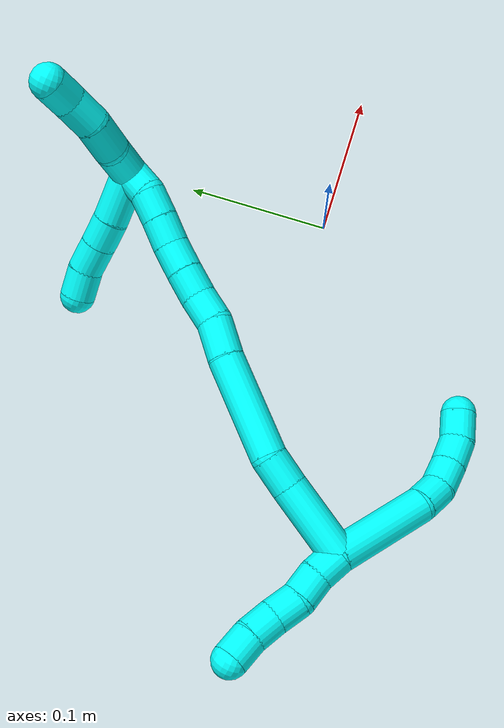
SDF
<sdf version="1.7">
 <world name="default">
  <model name="3">
   <static>0</static>
   <link name="3">
    <collision name="collision-cylinder-e_1_2_8">
     <pose>0.003586 -0.027274 0.020466 0.927049 0.10479 0.052415</pose>
     <geometry><cylinder><radius>0.0125</radius><length>0.068574</length></cylinder></geometry>
     <surface>
      <friction><ode><mu>1.16</mu><mu2>1.16</mu2><slip1>0</slip1><slip2>0</slip2></ode></friction>
      <contact><ode><kp>1e+06</kp><kd>1</kd><max_vel>0</max_vel><min_depth>0.001</min_depth></ode></contact>
     </surface>
    </collision>
    <visual name="visual-cylinder-e_1_2_8">
     <pose>0.003586 -0.027274 0.020466 0.927049 0.10479 0.052415</pose>
     <geometry><cylinder><radius>0.0125</radius><length>0.068574</length></cylinder></geometry>
     <material><ambient>0.003922 1 0.996078 1</ambient></material>
    </visual>
    <collision name="collision-cylinder-e_2_8_9">
     <pose>0.010712 -0.062586 0.045992 1.00896 0.35673 0.198425</pose>
     <geometry><cylinder><radius>0.0125</radius><length>0.020272</length></cylinder></geometry>
     <surface>
      <friction><ode><mu>1.16</mu><mu2>1.16</mu2><slip1>0</slip1><slip2>0</slip2></ode></friction>
      <contact><ode><kp>1e+06</kp><kd>1</kd><max_vel>0</max_vel><min_depth>0.001</min_depth></ode></contact>
     </surface>
    </collision>
    <visual name="visual-cylinder-e_2_8_9">
     <pose>0.010712 -0.062586 0.045992 1.00896 0.35673 0.198425</pose>
     <geometry><cylinder><radius>0.0125</radius><length>0.020272</length></cylinder></geometry>
     <material><ambient>0.003922 1 0.996078 1</ambient></material>
    </visual>
    <collision name="collision-cylinder-e_3_9_10">
     <pose>0.019839 -0.076142 0.057387 0.71657 0.586873 0.225326</pose>
     <geometry><cylinder><radius>0.0125</radius><length>0.02018</length></cylinder></geometry>
     <surface>
      <friction><ode><mu>1.16</mu><mu2>1.16</mu2><slip1>0</slip1><slip2>0</slip2></ode></friction>
      <contact><ode><kp>1e+06</kp><kd>1</kd><max_vel>0</max_vel><min_depth>0.001</min_depth></ode></contact>
     </surface>
    </collision>
    <visual name="visual-cylinder-e_3_9_10">
     <pose>0.019839 -0.076142 0.057387 0.71657 0.586873 0.225326</pose>
     <geometry><cylinder><radius>0.0125</radius><length>0.02018</length></cylinder></geometry>
     <material><ambient>0.003922 1 0.996078 1</ambient></material>
    </visual>
    <collision name="collision-cylinder-e_4_10_11">
     <pose>0.031125 -0.086246 0.070859 0.571202 0.591509 0.178456</pose>
     <geometry><cylinder><radius>0.0125</radius><length>0.020437</length></cylinder></geometry>
     <surface>
      <friction><ode><mu>1.16</mu><mu2>1.16</mu2><slip1>0</slip1><slip2>0</slip2></ode></friction>
      <contact><ode><kp>1e+06</kp><kd>1</kd><max_vel>0</max_vel><min_depth>0.001</min_depth></ode></contact>
     </surface>
    </collision>
    <visual name="visual-cylinder-e_4_10_11">
     <pose>0.031125 -0.086246 0.070859 0.571202 0.591509 0.178456</pose>
     <geometry><cylinder><radius>0.0125</radius><length>0.020437</length></cylinder></geometry>
     <material><ambient>0.003922 1 0.996078 1</ambient></material>
    </visual>
    <collision name="collision-cylinder-e_5_11_6">
     <pose>0.043767 -0.092264 0.085423 0.190365 0.742611 0.074312</pose>
     <geometry><cylinder><radius>0.0125</radius><length>0.020537</length></cylinder></geometry>
     <surface>
      <friction><ode><mu>1.16</mu><mu2>1.16</mu2><slip1>0</slip1><slip2>0</slip2></ode></friction>
      <contact><ode><kp>1e+06</kp><kd>1</kd><max_vel>0</max_vel><min_depth>0.001</min_depth></ode></contact>
     </surface>
    </collision>
    <visual name="visual-cylinder-e_5_11_6">
     <pose>0.043767 -0.092264 0.085423 0.190365 0.742611 0.074312</pose>
     <geometry><cylinder><radius>0.0125</radius><length>0.020537</length></cylinder></geometry>
     <material><ambient>0.003922 1 0.996078 1</ambient></material>
    </visual>
    <collision name="collision-cylinder-e_1_2_12">
     <pose>-0.001015 0.006032 -0.007911 -2.49016 -0.101625 0.298906</pose>
     <geometry><cylinder><radius>0.0125</radius><length>0.02</length></cylinder></geometry>
     <surface>
      <friction><ode><mu>1.16</mu><mu2>1.16</mu2><slip1>0</slip1><slip2>0</slip2></ode></friction>
      <contact><ode><kp>1e+06</kp><kd>1</kd><max_vel>0</max_vel><min_depth>0.001</min_depth></ode></contact>
     </surface>
    </collision>
    <visual name="visual-cylinder-e_1_2_12">
     <pose>-0.001015 0.006032 -0.007911 -2.49016 -0.101625 0.298906</pose>
     <geometry><cylinder><radius>0.0125</radius><length>0.02</length></cylinder></geometry>
     <material><ambient>0.003922 1 0.996078 1</ambient></material>
    </visual>
    <collision name="collision-cylinder-e_2_12_13">
     <pose>-0.005469 0.017842 -0.023223 -2.47874 -0.351213 0.952129</pose>
     <geometry><cylinder><radius>0.0125</radius><length>0.02</length></cylinder></geometry>
     <surface>
      <friction><ode><mu>1.16</mu><mu2>1.16</mu2><slip1>0</slip1><slip2>0</slip2></ode></friction>
      <contact><ode><kp>1e+06</kp><kd>1</kd><max_vel>0</max_vel><min_depth>0.001</min_depth></ode></contact>
     </surface>
    </collision>
    <visual name="visual-cylinder-e_2_12_13">
     <pose>-0.005469 0.017842 -0.023223 -2.47874 -0.351213 0.952129</pose>
     <geometry><cylinder><radius>0.0125</radius><length>0.02</length></cylinder></geometry>
     <material><ambient>0.003922 1 0.996078 1</ambient></material>
    </visual>
    <collision name="collision-cylinder-e_3_13_14">
     <pose>-0.009436 0.030482 -0.03788 -2.38408 -0.05263 0.132086</pose>
     <geometry><cylinder><radius>0.0125</radius><length>0.02</length></cylinder></geometry>
     <surface>
      <friction><ode><mu>1.16</mu><mu2>1.16</mu2><slip1>0</slip1><slip2>0</slip2></ode></friction>
      <contact><ode><kp>1e+06</kp><kd>1</kd><max_vel>0</max_vel><min_depth>0.001</min_depth></ode></contact>
     </surface>
    </collision>
    <visual name="visual-cylinder-e_3_13_14">
     <pose>-0.009436 0.030482 -0.03788 -2.38408 -0.05263 0.132086</pose>
     <geometry><cylinder><radius>0.0125</radius><length>0.02</length></cylinder></geometry>
     <material><ambient>0.003922 1 0.996078 1</ambient></material>
    </visual>
    <collision name="collision-cylinder-e_4_14_15">
     <pose>-0.011887 0.044646 -0.05169 -2.30226 -0.193671 0.428742</pose>
     <geometry><cylinder><radius>0.0125</radius><length>0.02</length></cylinder></geometry>
     <surface>
      <friction><ode><mu>1.16</mu><mu2>1.16</mu2><slip1>0</slip1><slip2>0</slip2></ode></friction>
      <contact><ode><kp>1e+06</kp><kd>1</kd><max_vel>0</max_vel><min_depth>0.001</min_depth></ode></contact>
     </surface>
    </collision>
    <visual name="visual-cylinder-e_4_14_15">
     <pose>-0.011887 0.044646 -0.05169 -2.30226 -0.193671 0.428742</pose>
     <geometry><cylinder><radius>0.0125</radius><length>0.02</length></cylinder></geometry>
     <material><ambient>0.003922 1 0.996078 1</ambient></material>
    </visual>
    <collision name="collision-cylinder-e_5_15_5">
     <pose>-0.017054 0.058257 -0.065294 -2.41163 -0.330229 0.822455</pose>
     <geometry><cylinder><radius>0.0125</radius><length>0.02</length></cylinder></geometry>
     <surface>
      <friction><ode><mu>1.16</mu><mu2>1.16</mu2><slip1>0</slip1><slip2>0</slip2></ode></friction>
      <contact><ode><kp>1e+06</kp><kd>1</kd><max_vel>0</max_vel><min_depth>0.001</min_depth></ode></contact>
     </surface>
    </collision>
    <visual name="visual-cylinder-e_5_15_5">
     <pose>-0.017054 0.058257 -0.065294 -2.41163 -0.330229 0.822455</pose>
     <geometry><cylinder><radius>0.0125</radius><length>0.02</length></cylinder></geometry>
     <material><ambient>0.003922 1 0.996078 1</ambient></material>
    </visual>
    <collision name="collision-cylinder-e_1_2_16">
     <pose>0.020003 0.015075 0.011626 -0.913862 0.810141 -0.415523</pose>
     <geometry><cylinder><radius>0.0125</radius><length>0.055228</length></cylinder></geometry>
     <surface>
      <friction><ode><mu>1.16</mu><mu2>1.16</mu2><slip1>0</slip1><slip2>0</slip2></ode></friction>
      <contact><ode><kp>1e+06</kp><kd>1</kd><max_vel>0</max_vel><min_depth>0.001</min_depth></ode></contact>
     </surface>
    </collision>
    <visual name="visual-cylinder-e_1_2_16">
     <pose>0.020003 0.015075 0.011626 -0.913862 0.810141 -0.415523</pose>
     <geometry><cylinder><radius>0.0125</radius><length>0.055228</length></cylinder></geometry>
     <material><ambient>0.003922 1 0.996078 1</ambient></material>
    </visual>
    <collision name="collision-cylinder-e_2_16_17">
     <pose>0.048058 0.036826 0.028806 -0.876881 0.747587 -0.363754</pose>
     <geometry><cylinder><radius>0.0125</radius><length>0.023687</length></cylinder></geometry>
     <surface>
      <friction><ode><mu>1.16</mu><mu2>1.16</mu2><slip1>0</slip1><slip2>0</slip2></ode></friction>
      <contact><ode><kp>1e+06</kp><kd>1</kd><max_vel>0</max_vel><min_depth>0.001</min_depth></ode></contact>
     </surface>
    </collision>
    <visual name="visual-cylinder-e_2_16_17">
     <pose>0.048058 0.036826 0.028806 -0.876881 0.747587 -0.363754</pose>
     <geometry><cylinder><radius>0.0125</radius><length>0.023687</length></cylinder></geometry>
     <material><ambient>0.003922 1 0.996078 1</ambient></material>
    </visual>
    <collision name="collision-cylinder-e_3_17_18">
     <pose>0.084519 0.054964 0.053596 -0.53734 0.903304 -0.265547</pose>
     <geometry><cylinder><radius>0.0125</radius><length>0.072345</length></cylinder></geometry>
     <surface>
      <friction><ode><mu>1.16</mu><mu2>1.16</mu2><slip1>0</slip1><slip2>0</slip2></ode></friction>
      <contact><ode><kp>1e+06</kp><kd>1</kd><max_vel>0</max_vel><min_depth>0.001</min_depth></ode></contact>
     </surface>
    </collision>
    <visual name="visual-cylinder-e_3_17_18">
     <pose>0.084519 0.054964 0.053596 -0.53734 0.903304 -0.265547</pose>
     <geometry><cylinder><radius>0.0125</radius><length>0.072345</length></cylinder></geometry>
     <material><ambient>0.003922 1 0.996078 1</ambient></material>
    </visual>
    <collision name="collision-cylinder-e_4_18_19">
     <pose>0.123644 0.06914 0.080476 -0.341259 0.92286 -0.170933</pose>
     <geometry><cylinder><radius>0.0125</radius><length>0.02688</length></cylinder></geometry>
     <surface>
      <friction><ode><mu>1.16</mu><mu2>1.16</mu2><slip1>0</slip1><slip2>0</slip2></ode></friction>
      <contact><ode><kp>1e+06</kp><kd>1</kd><max_vel>0</max_vel><min_depth>0.001</min_depth></ode></contact>
     </surface>
    </collision>
    <visual name="visual-cylinder-e_4_18_19">
     <pose>0.123644 0.06914 0.080476 -0.341259 0.92286 -0.170933</pose>
     <geometry><cylinder><radius>0.0125</radius><length>0.02688</length></cylinder></geometry>
     <material><ambient>0.003922 1 0.996078 1</ambient></material>
    </visual>
    <collision name="collision-cylinder-e_5_19_20">
     <pose>0.143398 0.075653 0.092085 -0.764003 1.02486 -0.444525</pose>
     <geometry><cylinder><radius>0.0125</radius><length>0.02115</length></cylinder></geometry>
     <surface>
      <friction><ode><mu>1.16</mu><mu2>1.16</mu2><slip1>0</slip1><slip2>0</slip2></ode></friction>
      <contact><ode><kp>1e+06</kp><kd>1</kd><max_vel>0</max_vel><min_depth>0.001</min_depth></ode></contact>
     </surface>
    </collision>
    <visual name="visual-cylinder-e_5_19_20">
     <pose>0.143398 0.075653 0.092085 -0.764003 1.02486 -0.444525</pose>
     <geometry><cylinder><radius>0.0125</radius><length>0.02115</length></cylinder></geometry>
     <material><ambient>0.003922 1 0.996078 1</ambient></material>
    </visual>
    <collision name="collision-cylinder-e_6_20_21">
     <pose>0.15998 0.083989 0.101231 -0.719235 0.830883 -0.328698</pose>
     <geometry><cylinder><radius>0.0125</radius><length>0.020429</length></cylinder></geometry>
     <surface>
      <friction><ode><mu>1.16</mu><mu2>1.16</mu2><slip1>0</slip1><slip2>0</slip2></ode></friction>
      <contact><ode><kp>1e+06</kp><kd>1</kd><max_vel>0</max_vel><min_depth>0.001</min_depth></ode></contact>
     </surface>
    </collision>
    <visual name="visual-cylinder-e_6_20_21">
     <pose>0.15998 0.083989 0.101231 -0.719235 0.830883 -0.328698</pose>
     <geometry><cylinder><radius>0.0125</radius><length>0.020429</length></cylinder></geometry>
     <material><ambient>0.003922 1 0.996078 1</ambient></material>
    </visual>
    <collision name="collision-cylinder-e_7_21_22">
     <pose>0.175163 0.092596 0.111622 -0.663088 0.857427 -0.312131</pose>
     <geometry><cylinder><radius>0.0125</radius><length>0.020206</length></cylinder></geometry>
     <surface>
      <friction><ode><mu>1.16</mu><mu2>1.16</mu2><slip1>0</slip1><slip2>0</slip2></ode></friction>
      <contact><ode><kp>1e+06</kp><kd>1</kd><max_vel>0</max_vel><min_depth>0.001</min_depth></ode></contact>
     </surface>
    </collision>
    <visual name="visual-cylinder-e_7_21_22">
     <pose>0.175163 0.092596 0.111622 -0.663088 0.857427 -0.312131</pose>
     <geometry><cylinder><radius>0.0125</radius><length>0.020206</length></cylinder></geometry>
     <material><ambient>0.003922 1 0.996078 1</ambient></material>
    </visual>
    <collision name="collision-cylinder-e_8_22_23">
     <pose>0.189648 0.100828 0.122848 -0.605374 0.752217 -0.245407</pose>
     <geometry><cylinder><radius>0.0125</radius><length>0.020038</length></cylinder></geometry>
     <surface>
      <friction><ode><mu>1.16</mu><mu2>1.16</mu2><slip1>0</slip1><slip2>0</slip2></ode></friction>
      <contact><ode><kp>1e+06</kp><kd>1</kd><max_vel>0</max_vel><min_depth>0.001</min_depth></ode></contact>
     </surface>
    </collision>
    <visual name="visual-cylinder-e_8_22_23">
     <pose>0.189648 0.100828 0.122848 -0.605374 0.752217 -0.245407</pose>
     <geometry><cylinder><radius>0.0125</radius><length>0.020038</length></cylinder></geometry>
     <material><ambient>0.003922 1 0.996078 1</ambient></material>
    </visual>
    <collision name="collision-cylinder-e_9_23_24">
     <pose>0.203578 0.109239 0.134524 -0.643736 0.785867 -0.274693</pose>
     <geometry><cylinder><radius>0.0125</radius><length>0.020028</length></cylinder></geometry>
     <surface>
      <friction><ode><mu>1.16</mu><mu2>1.16</mu2><slip1>0</slip1><slip2>0</slip2></ode></friction>
      <contact><ode><kp>1e+06</kp><kd>1</kd><max_vel>0</max_vel><min_depth>0.001</min_depth></ode></contact>
     </surface>
    </collision>
    <visual name="visual-cylinder-e_9_23_24">
     <pose>0.203578 0.109239 0.134524 -0.643736 0.785867 -0.274693</pose>
     <geometry><cylinder><radius>0.0125</radius><length>0.020028</length></cylinder></geometry>
     <material><ambient>0.003922 1 0.996078 1</ambient></material>
    </visual>
    <collision name="collision-cylinder-e_10_24_1">
     <pose>0.219257 0.11784 0.142882 -1.01619 1.03355 -0.612972</pose>
     <geometry><cylinder><radius>0.0125</radius><length>0.02001</length></cylinder></geometry>
     <surface>
      <friction><ode><mu>1.16</mu><mu2>1.16</mu2><slip1>0</slip1><slip2>0</slip2></ode></friction>
      <contact><ode><kp>1e+06</kp><kd>1</kd><max_vel>0</max_vel><min_depth>0.001</min_depth></ode></contact>
     </surface>
    </collision>
    <visual name="visual-cylinder-e_10_24_1">
     <pose>0.219257 0.11784 0.142882 -1.01619 1.03355 -0.612972</pose>
     <geometry><cylinder><radius>0.0125</radius><length>0.02001</length></cylinder></geometry>
     <material><ambient>0.003922 1 0.996078 1</ambient></material>
    </visual>
    <collision name="collision-cylinder-e_1_1_25">
     <pose>0.228383 0.121375 0.127286 3.0969 0.028968 1.15011</pose>
     <geometry><cylinder><radius>0.0125</radius><length>0.036637</length></cylinder></geometry>
     <surface>
      <friction><ode><mu>1.16</mu><mu2>1.16</mu2><slip1>0</slip1><slip2>0</slip2></ode></friction>
      <contact><ode><kp>1e+06</kp><kd>1</kd><max_vel>0</max_vel><min_depth>0.001</min_depth></ode></contact>
     </surface>
    </collision>
    <visual name="visual-cylinder-e_1_1_25">
     <pose>0.228383 0.121375 0.127286 3.0969 0.028968 1.15011</pose>
     <geometry><cylinder><radius>0.0125</radius><length>0.036637</length></cylinder></geometry>
     <material><ambient>0.003922 1 0.996078 1</ambient></material>
    </visual>
    <collision name="collision-cylinder-e_2_25_26">
     <pose>0.230092 0.120517 0.098802 3.13767 0.115057 3.07352</pose>
     <geometry><cylinder><radius>0.0125</radius><length>0.020519</length></cylinder></geometry>
     <surface>
      <friction><ode><mu>1.16</mu><mu2>1.16</mu2><slip1>0</slip1><slip2>0</slip2></ode></friction>
      <contact><ode><kp>1e+06</kp><kd>1</kd><max_vel>0</max_vel><min_depth>0.001</min_depth></ode></contact>
     </surface>
    </collision>
    <visual name="visual-cylinder-e_2_25_26">
     <pose>0.230092 0.120517 0.098802 3.13767 0.115057 3.07352</pose>
     <geometry><cylinder><radius>0.0125</radius><length>0.020519</length></cylinder></geometry>
     <material><ambient>0.003922 1 0.996078 1</ambient></material>
    </visual>
    <collision name="collision-cylinder-e_3_26_27">
     <pose>0.232621 0.12052 0.077805 -3.13755 0.124433 -3.07672</pose>
     <geometry><cylinder><radius>0.0125</radius><length>0.021779</length></cylinder></geometry>
     <surface>
      <friction><ode><mu>1.16</mu><mu2>1.16</mu2><slip1>0</slip1><slip2>0</slip2></ode></friction>
      <contact><ode><kp>1e+06</kp><kd>1</kd><max_vel>0</max_vel><min_depth>0.001</min_depth></ode></contact>
     </surface>
    </collision>
    <visual name="visual-cylinder-e_3_26_27">
     <pose>0.232621 0.12052 0.077805 -3.13755 0.124433 -3.07672</pose>
     <geometry><cylinder><radius>0.0125</radius><length>0.021779</length></cylinder></geometry>
     <material><ambient>0.003922 1 0.996078 1</ambient></material>
    </visual>
    <collision name="collision-cylinder-e_4_27_4">
     <pose>0.233228 0.119644 0.056534 3.05396 -0.070722 -1.35779</pose>
     <geometry><cylinder><radius>0.0125</radius><length>0.021065</length></cylinder></geometry>
     <surface>
      <friction><ode><mu>1.16</mu><mu2>1.16</mu2><slip1>0</slip1><slip2>0</slip2></ode></friction>
      <contact><ode><kp>1e+06</kp><kd>1</kd><max_vel>0</max_vel><min_depth>0.001</min_depth></ode></contact>
     </surface>
    </collision>
    <visual name="visual-cylinder-e_4_27_4">
     <pose>0.233228 0.119644 0.056534 3.05396 -0.070722 -1.35779</pose>
     <geometry><cylinder><radius>0.0125</radius><length>0.021065</length></cylinder></geometry>
     <material><ambient>0.003922 1 0.996078 1</ambient></material>
    </visual>
    <collision name="collision-cylinder-e_1_1_28">
     <pose>0.222627 0.135435 0.153066 -1.05617 -0.330849 0.194168</pose>
     <geometry><cylinder><radius>0.0125</radius><length>0.032171</length></cylinder></geometry>
     <surface>
      <friction><ode><mu>1.16</mu><mu2>1.16</mu2><slip1>0</slip1><slip2>0</slip2></ode></friction>
      <contact><ode><kp>1e+06</kp><kd>1</kd><max_vel>0</max_vel><min_depth>0.001</min_depth></ode></contact>
     </surface>
    </collision>
    <visual name="visual-cylinder-e_1_1_28">
     <pose>0.222627 0.135435 0.153066 -1.05617 -0.330849 0.194168</pose>
     <geometry><cylinder><radius>0.0125</radius><length>0.032171</length></cylinder></geometry>
     <material><ambient>0.003922 1 0.996078 1</ambient></material>
    </visual>
    <collision name="collision-cylinder-e_2_28_29">
     <pose>0.216968 0.159248 0.167244 -1.00652 -0.03466 0.019083</pose>
     <geometry><cylinder><radius>0.0125</radius><length>0.025034</length></cylinder></geometry>
     <surface>
      <friction><ode><mu>1.16</mu><mu2>1.16</mu2><slip1>0</slip1><slip2>0</slip2></ode></friction>
      <contact><ode><kp>1e+06</kp><kd>1</kd><max_vel>0</max_vel><min_depth>0.001</min_depth></ode></contact>
     </surface>
    </collision>
    <visual name="visual-cylinder-e_2_28_29">
     <pose>0.216968 0.159248 0.167244 -1.00652 -0.03466 0.019083</pose>
     <geometry><cylinder><radius>0.0125</radius><length>0.025034</length></cylinder></geometry>
     <material><ambient>0.003922 1 0.996078 1</ambient></material>
    </visual>
    <collision name="collision-cylinder-e_3_29_30">
     <pose>0.218405 0.179767 0.178391 -1.1496 0.169876 -0.110194</pose>
     <geometry><cylinder><radius>0.0125</radius><length>0.022122</length></cylinder></geometry>
     <surface>
      <friction><ode><mu>1.16</mu><mu2>1.16</mu2><slip1>0</slip1><slip2>0</slip2></ode></friction>
      <contact><ode><kp>1e+06</kp><kd>1</kd><max_vel>0</max_vel><min_depth>0.001</min_depth></ode></contact>
     </surface>
    </collision>
    <visual name="visual-cylinder-e_3_29_30">
     <pose>0.218405 0.179767 0.178391 -1.1496 0.169876 -0.110194</pose>
     <geometry><cylinder><radius>0.0125</radius><length>0.022122</length></cylinder></geometry>
     <material><ambient>0.003922 1 0.996078 1</ambient></material>
    </visual>
    <collision name="collision-cylinder-e_4_30_3">
     <pose>0.219703 0.19922 0.186873 -1.17024 -0.055308 0.036647</pose>
     <geometry><cylinder><radius>0.0125</radius><length>0.020674</length></cylinder></geometry>
     <surface>
      <friction><ode><mu>1.16</mu><mu2>1.16</mu2><slip1>0</slip1><slip2>0</slip2></ode></friction>
      <contact><ode><kp>1e+06</kp><kd>1</kd><max_vel>0</max_vel><min_depth>0.001</min_depth></ode></contact>
     </surface>
    </collision>
    <visual name="visual-cylinder-e_4_30_3">
     <pose>0.219703 0.19922 0.186873 -1.17024 -0.055308 0.036647</pose>
     <geometry><cylinder><radius>0.0125</radius><length>0.020674</length></cylinder></geometry>
     <material><ambient>0.003922 1 0.996078 1</ambient></material>
    </visual>
    <collision name="collision-sphere-3">
     <pose>0.219132 0.208724 0.190897 0 -0 0</pose>
     <geometry><sphere><radius>0.0125</radius></sphere></geometry>
     <surface>
      <friction><ode><mu>1.16</mu><mu2>1.16</mu2><slip1>0</slip1><slip2>0</slip2></ode></friction>
      <contact><ode><kp>1e+06</kp><kd>1</kd><max_vel>0</max_vel><min_depth>0.001</min_depth></ode></contact>
     </surface>
    </collision>
    <visual name="visual-sphere-3">
     <pose>0.219132 0.208724 0.190897 0 -0 0</pose>
     <geometry><sphere><radius>0.0125</radius></sphere></geometry>
     <material><ambient>0.003922 1 0.996078 1</ambient></material>
    </visual>
    <collision name="collision-sphere-30">
     <pose>0.220275 0.189716 0.182848 0 -0 0</pose>
     <geometry><sphere><radius>0.0125</radius></sphere></geometry>
     <surface>
      <friction><ode><mu>1.16</mu><mu2>1.16</mu2><slip1>0</slip1><slip2>0</slip2></ode></friction>
      <contact><ode><kp>1e+06</kp><kd>1</kd><max_vel>0</max_vel><min_depth>0.001</min_depth></ode></contact>
     </surface>
    </collision>
    <visual name="visual-sphere-30">
     <pose>0.220275 0.189716 0.182848 0 -0 0</pose>
     <geometry><sphere><radius>0.0125</radius></sphere></geometry>
     <material><ambient>0.003922 1 0.996078 1</ambient></material>
    </visual>
    <collision name="collision-sphere-29">
     <pose>0.216535 0.169818 0.173934 0 -0 0</pose>
     <geometry><sphere><radius>0.0125</radius></sphere></geometry>
     <surface>
      <friction><ode><mu>1.16</mu><mu2>1.16</mu2><slip1>0</slip1><slip2>0</slip2></ode></friction>
      <contact><ode><kp>1e+06</kp><kd>1</kd><max_vel>0</max_vel><min_depth>0.001</min_depth></ode></contact>
     </surface>
    </collision>
    <visual name="visual-sphere-29">
     <pose>0.216535 0.169818 0.173934 0 -0 0</pose>
     <geometry><sphere><radius>0.0125</radius></sphere></geometry>
     <material><ambient>0.003922 1 0.996078 1</ambient></material>
    </visual>
    <collision name="collision-sphere-28">
     <pose>0.217402 0.148678 0.160554 0 -0 0</pose>
     <geometry><sphere><radius>0.0125</radius></sphere></geometry>
     <surface>
      <friction><ode><mu>1.16</mu><mu2>1.16</mu2><slip1>0</slip1><slip2>0</slip2></ode></friction>
      <contact><ode><kp>1e+06</kp><kd>1</kd><max_vel>0</max_vel><min_depth>0.001</min_depth></ode></contact>
     </surface>
    </collision>
    <visual name="visual-sphere-28">
     <pose>0.217402 0.148678 0.160554 0 -0 0</pose>
     <geometry><sphere><radius>0.0125</radius></sphere></geometry>
     <material><ambient>0.003922 1 0.996078 1</ambient></material>
    </visual>
    <collision name="collision-sphere-4">
     <pose>0.232484 0.118725 0.046068 0 -0 0</pose>
     <geometry><sphere><radius>0.0125</radius></sphere></geometry>
     <surface>
      <friction><ode><mu>1.16</mu><mu2>1.16</mu2><slip1>0</slip1><slip2>0</slip2></ode></friction>
      <contact><ode><kp>1e+06</kp><kd>1</kd><max_vel>0</max_vel><min_depth>0.001</min_depth></ode></contact>
     </surface>
    </collision>
    <visual name="visual-sphere-4">
     <pose>0.232484 0.118725 0.046068 0 -0 0</pose>
     <geometry><sphere><radius>0.0125</radius></sphere></geometry>
     <material><ambient>0.003922 1 0.996078 1</ambient></material>
    </visual>
    <collision name="collision-sphere-27">
     <pose>0.233973 0.120564 0.066999 0 -0 0</pose>
     <geometry><sphere><radius>0.0125</radius></sphere></geometry>
     <surface>
      <friction><ode><mu>1.16</mu><mu2>1.16</mu2><slip1>0</slip1><slip2>0</slip2></ode></friction>
      <contact><ode><kp>1e+06</kp><kd>1</kd><max_vel>0</max_vel><min_depth>0.001</min_depth></ode></contact>
     </surface>
    </collision>
    <visual name="visual-sphere-27">
     <pose>0.233973 0.120564 0.066999 0 -0 0</pose>
     <geometry><sphere><radius>0.0125</radius></sphere></geometry>
     <material><ambient>0.003922 1 0.996078 1</ambient></material>
    </visual>
    <collision name="collision-sphere-26">
     <pose>0.231269 0.120477 0.08861 0 -0 0</pose>
     <geometry><sphere><radius>0.0125</radius></sphere></geometry>
     <surface>
      <friction><ode><mu>1.16</mu><mu2>1.16</mu2><slip1>0</slip1><slip2>0</slip2></ode></friction>
      <contact><ode><kp>1e+06</kp><kd>1</kd><max_vel>0</max_vel><min_depth>0.001</min_depth></ode></contact>
     </surface>
    </collision>
    <visual name="visual-sphere-26">
     <pose>0.231269 0.120477 0.08861 0 -0 0</pose>
     <geometry><sphere><radius>0.0125</radius></sphere></geometry>
     <material><ambient>0.003922 1 0.996078 1</ambient></material>
    </visual>
    <collision name="collision-sphere-25">
     <pose>0.228914 0.120557 0.108993 0 -0 0</pose>
     <geometry><sphere><radius>0.0125</radius></sphere></geometry>
     <surface>
      <friction><ode><mu>1.16</mu><mu2>1.16</mu2><slip1>0</slip1><slip2>0</slip2></ode></friction>
      <contact><ode><kp>1e+06</kp><kd>1</kd><max_vel>0</max_vel><min_depth>0.001</min_depth></ode></contact>
     </surface>
    </collision>
    <visual name="visual-sphere-25">
     <pose>0.228914 0.120557 0.108993 0 -0 0</pose>
     <geometry><sphere><radius>0.0125</radius></sphere></geometry>
     <material><ambient>0.003922 1 0.996078 1</ambient></material>
    </visual>
    <collision name="collision-sphere-1">
     <pose>0.227853 0.122193 0.145578 0 -0 0</pose>
     <geometry><sphere><radius>0.0125</radius></sphere></geometry>
     <surface>
      <friction><ode><mu>1.16</mu><mu2>1.16</mu2><slip1>0</slip1><slip2>0</slip2></ode></friction>
      <contact><ode><kp>1e+06</kp><kd>1</kd><max_vel>0</max_vel><min_depth>0.001</min_depth></ode></contact>
     </surface>
    </collision>
    <visual name="visual-sphere-1">
     <pose>0.227853 0.122193 0.145578 0 -0 0</pose>
     <geometry><sphere><radius>0.0125</radius></sphere></geometry>
     <material><ambient>0.003922 1 0.996078 1</ambient></material>
    </visual>
    <collision name="collision-sphere-24">
     <pose>0.210662 0.113487 0.140186 0 -0 0</pose>
     <geometry><sphere><radius>0.0125</radius></sphere></geometry>
     <surface>
      <friction><ode><mu>1.16</mu><mu2>1.16</mu2><slip1>0</slip1><slip2>0</slip2></ode></friction>
      <contact><ode><kp>1e+06</kp><kd>1</kd><max_vel>0</max_vel><min_depth>0.001</min_depth></ode></contact>
     </surface>
    </collision>
    <visual name="visual-sphere-24">
     <pose>0.210662 0.113487 0.140186 0 -0 0</pose>
     <geometry><sphere><radius>0.0125</radius></sphere></geometry>
     <material><ambient>0.003922 1 0.996078 1</ambient></material>
    </visual>
    <collision name="collision-sphere-23">
     <pose>0.196494 0.104991 0.128863 0 -0 0</pose>
     <geometry><sphere><radius>0.0125</radius></sphere></geometry>
     <surface>
      <friction><ode><mu>1.16</mu><mu2>1.16</mu2><slip1>0</slip1><slip2>0</slip2></ode></friction>
      <contact><ode><kp>1e+06</kp><kd>1</kd><max_vel>0</max_vel><min_depth>0.001</min_depth></ode></contact>
     </surface>
    </collision>
    <visual name="visual-sphere-23">
     <pose>0.196494 0.104991 0.128863 0 -0 0</pose>
     <geometry><sphere><radius>0.0125</radius></sphere></geometry>
     <material><ambient>0.003922 1 0.996078 1</ambient></material>
    </visual>
    <collision name="collision-sphere-22">
     <pose>0.182803 0.096665 0.116832 0 -0 0</pose>
     <geometry><sphere><radius>0.0125</radius></sphere></geometry>
     <surface>
      <friction><ode><mu>1.16</mu><mu2>1.16</mu2><slip1>0</slip1><slip2>0</slip2></ode></friction>
      <contact><ode><kp>1e+06</kp><kd>1</kd><max_vel>0</max_vel><min_depth>0.001</min_depth></ode></contact>
     </surface>
    </collision>
    <visual name="visual-sphere-22">
     <pose>0.182803 0.096665 0.116832 0 -0 0</pose>
     <geometry><sphere><radius>0.0125</radius></sphere></geometry>
     <material><ambient>0.003922 1 0.996078 1</ambient></material>
    </visual>
    <collision name="collision-sphere-21">
     <pose>0.167524 0.088526 0.106412 0 -0 0</pose>
     <geometry><sphere><radius>0.0125</radius></sphere></geometry>
     <surface>
      <friction><ode><mu>1.16</mu><mu2>1.16</mu2><slip1>0</slip1><slip2>0</slip2></ode></friction>
      <contact><ode><kp>1e+06</kp><kd>1</kd><max_vel>0</max_vel><min_depth>0.001</min_depth></ode></contact>
     </surface>
    </collision>
    <visual name="visual-sphere-21">
     <pose>0.167524 0.088526 0.106412 0 -0 0</pose>
     <geometry><sphere><radius>0.0125</radius></sphere></geometry>
     <material><ambient>0.003922 1 0.996078 1</ambient></material>
    </visual>
    <collision name="collision-sphere-6">
     <pose>0.05071 -0.093695 0.092851 0 -0 0</pose>
     <geometry><sphere><radius>0.0125</radius></sphere></geometry>
     <surface>
      <friction><ode><mu>1.16</mu><mu2>1.16</mu2><slip1>0</slip1><slip2>0</slip2></ode></friction>
      <contact><ode><kp>1e+06</kp><kd>1</kd><max_vel>0</max_vel><min_depth>0.001</min_depth></ode></contact>
     </surface>
    </collision>
    <visual name="visual-sphere-6">
     <pose>0.05071 -0.093695 0.092851 0 -0 0</pose>
     <geometry><sphere><radius>0.0125</radius></sphere></geometry>
     <material><ambient>0.003922 1 0.996078 1</ambient></material>
    </visual>
    <collision name="collision-sphere-11">
     <pose>0.036823 -0.090832 0.077995 0 -0 0</pose>
     <geometry><sphere><radius>0.0125</radius></sphere></geometry>
     <surface>
      <friction><ode><mu>1.16</mu><mu2>1.16</mu2><slip1>0</slip1><slip2>0</slip2></ode></friction>
      <contact><ode><kp>1e+06</kp><kd>1</kd><max_vel>0</max_vel><min_depth>0.001</min_depth></ode></contact>
     </surface>
    </collision>
    <visual name="visual-sphere-11">
     <pose>0.036823 -0.090832 0.077995 0 -0 0</pose>
     <geometry><sphere><radius>0.0125</radius></sphere></geometry>
     <material><ambient>0.003922 1 0.996078 1</ambient></material>
    </visual>
    <collision name="collision-sphere-10">
     <pose>0.025427 -0.08166 0.063723 0 -0 0</pose>
     <geometry><sphere><radius>0.0125</radius></sphere></geometry>
     <surface>
      <friction><ode><mu>1.16</mu><mu2>1.16</mu2><slip1>0</slip1><slip2>0</slip2></ode></friction>
      <contact><ode><kp>1e+06</kp><kd>1</kd><max_vel>0</max_vel><min_depth>0.001</min_depth></ode></contact>
     </surface>
    </collision>
    <visual name="visual-sphere-10">
     <pose>0.025427 -0.08166 0.063723 0 -0 0</pose>
     <geometry><sphere><radius>0.0125</radius></sphere></geometry>
     <material><ambient>0.003922 1 0.996078 1</ambient></material>
    </visual>
    <collision name="collision-sphere-9">
     <pose>0.014252 -0.070624 0.051052 0 -0 0</pose>
     <geometry><sphere><radius>0.0125</radius></sphere></geometry>
     <surface>
      <friction><ode><mu>1.16</mu><mu2>1.16</mu2><slip1>0</slip1><slip2>0</slip2></ode></friction>
      <contact><ode><kp>1e+06</kp><kd>1</kd><max_vel>0</max_vel><min_depth>0.001</min_depth></ode></contact>
     </surface>
    </collision>
    <visual name="visual-sphere-9">
     <pose>0.014252 -0.070624 0.051052 0 -0 0</pose>
     <geometry><sphere><radius>0.0125</radius></sphere></geometry>
     <material><ambient>0.003922 1 0.996078 1</ambient></material>
    </visual>
    <collision name="collision-sphere-2">
     <geometry><sphere><radius>0.0125</radius></sphere></geometry>
     <surface>
      <friction><ode><mu>1.16</mu><mu2>1.16</mu2><slip1>0</slip1><slip2>0</slip2></ode></friction>
      <contact><ode><kp>1e+06</kp><kd>1</kd><max_vel>0</max_vel><min_depth>0.001</min_depth></ode></contact>
     </surface>
    </collision>
    <visual name="visual-sphere-2">
     <geometry><sphere><radius>0.0125</radius></sphere></geometry>
     <material><ambient>0.003922 1 0.996078 1</ambient></material>
    </visual>
    <collision name="collision-sphere-19">
     <pose>0.13436 0.071854 0.08812 0 -0 0</pose>
     <geometry><sphere><radius>0.0125</radius></sphere></geometry>
     <surface>
      <friction><ode><mu>1.16</mu><mu2>1.16</mu2><slip1>0</slip1><slip2>0</slip2></ode></friction>
      <contact><ode><kp>1e+06</kp><kd>1</kd><max_vel>0</max_vel><min_depth>0.001</min_depth></ode></contact>
     </surface>
    </collision>
    <visual name="visual-sphere-19">
     <pose>0.13436 0.071854 0.08812 0 -0 0</pose>
     <geometry><sphere><radius>0.0125</radius></sphere></geometry>
     <material><ambient>0.003922 1 0.996078 1</ambient></material>
    </visual>
    <collision name="collision-sphere-8">
     <pose>0.007173 -0.054548 0.040932 0 -0 0</pose>
     <geometry><sphere><radius>0.0125</radius></sphere></geometry>
     <surface>
      <friction><ode><mu>1.16</mu><mu2>1.16</mu2><slip1>0</slip1><slip2>0</slip2></ode></friction>
      <contact><ode><kp>1e+06</kp><kd>1</kd><max_vel>0</max_vel><min_depth>0.001</min_depth></ode></contact>
     </surface>
    </collision>
    <visual name="visual-sphere-8">
     <pose>0.007173 -0.054548 0.040932 0 -0 0</pose>
     <geometry><sphere><radius>0.0125</radius></sphere></geometry>
     <material><ambient>0.003922 1 0.996078 1</ambient></material>
    </visual>
    <collision name="collision-sphere-12">
     <pose>-0.002029 0.012064 -0.015822 0 -0 0</pose>
     <geometry><sphere><radius>0.0125</radius></sphere></geometry>
     <surface>
      <friction><ode><mu>1.16</mu><mu2>1.16</mu2><slip1>0</slip1><slip2>0</slip2></ode></friction>
      <contact><ode><kp>1e+06</kp><kd>1</kd><max_vel>0</max_vel><min_depth>0.001</min_depth></ode></contact>
     </surface>
    </collision>
    <visual name="visual-sphere-12">
     <pose>-0.002029 0.012064 -0.015822 0 -0 0</pose>
     <geometry><sphere><radius>0.0125</radius></sphere></geometry>
     <material><ambient>0.003922 1 0.996078 1</ambient></material>
    </visual>
    <collision name="collision-sphere-13">
     <pose>-0.00891 0.02362 -0.030625 0 -0 0</pose>
     <geometry><sphere><radius>0.0125</radius></sphere></geometry>
     <surface>
      <friction><ode><mu>1.16</mu><mu2>1.16</mu2><slip1>0</slip1><slip2>0</slip2></ode></friction>
      <contact><ode><kp>1e+06</kp><kd>1</kd><max_vel>0</max_vel><min_depth>0.001</min_depth></ode></contact>
     </surface>
    </collision>
    <visual name="visual-sphere-13">
     <pose>-0.00891 0.02362 -0.030625 0 -0 0</pose>
     <geometry><sphere><radius>0.0125</radius></sphere></geometry>
     <material><ambient>0.003922 1 0.996078 1</ambient></material>
    </visual>
    <collision name="collision-sphere-14">
     <pose>-0.009962 0.037343 -0.045136 0 -0 0</pose>
     <geometry><sphere><radius>0.0125</radius></sphere></geometry>
     <surface>
      <friction><ode><mu>1.16</mu><mu2>1.16</mu2><slip1>0</slip1><slip2>0</slip2></ode></friction>
      <contact><ode><kp>1e+06</kp><kd>1</kd><max_vel>0</max_vel><min_depth>0.001</min_depth></ode></contact>
     </surface>
    </collision>
    <visual name="visual-sphere-14">
     <pose>-0.009962 0.037343 -0.045136 0 -0 0</pose>
     <geometry><sphere><radius>0.0125</radius></sphere></geometry>
     <material><ambient>0.003922 1 0.996078 1</ambient></material>
    </visual>
    <collision name="collision-sphere-15">
     <pose>-0.013811 0.051949 -0.058245 0 -0 0</pose>
     <geometry><sphere><radius>0.0125</radius></sphere></geometry>
     <surface>
      <friction><ode><mu>1.16</mu><mu2>1.16</mu2><slip1>0</slip1><slip2>0</slip2></ode></friction>
      <contact><ode><kp>1e+06</kp><kd>1</kd><max_vel>0</max_vel><min_depth>0.001</min_depth></ode></contact>
     </surface>
    </collision>
    <visual name="visual-sphere-15">
     <pose>-0.013811 0.051949 -0.058245 0 -0 0</pose>
     <geometry><sphere><radius>0.0125</radius></sphere></geometry>
     <material><ambient>0.003922 1 0.996078 1</ambient></material>
    </visual>
    <collision name="collision-sphere-5">
     <pose>-0.020296 0.064565 -0.072344 0 -0 0</pose>
     <geometry><sphere><radius>0.0125</radius></sphere></geometry>
     <surface>
      <friction><ode><mu>1.16</mu><mu2>1.16</mu2><slip1>0</slip1><slip2>0</slip2></ode></friction>
      <contact><ode><kp>1e+06</kp><kd>1</kd><max_vel>0</max_vel><min_depth>0.001</min_depth></ode></contact>
     </surface>
    </collision>
    <visual name="visual-sphere-5">
     <pose>-0.020296 0.064565 -0.072344 0 -0 0</pose>
     <geometry><sphere><radius>0.0125</radius></sphere></geometry>
     <material><ambient>0.003922 1 0.996078 1</ambient></material>
    </visual>
    <collision name="collision-sphere-16">
     <pose>0.040006 0.030149 0.023251 0 -0 0</pose>
     <geometry><sphere><radius>0.0125</radius></sphere></geometry>
     <surface>
      <friction><ode><mu>1.16</mu><mu2>1.16</mu2><slip1>0</slip1><slip2>0</slip2></ode></friction>
      <contact><ode><kp>1e+06</kp><kd>1</kd><max_vel>0</max_vel><min_depth>0.001</min_depth></ode></contact>
     </surface>
    </collision>
    <visual name="visual-sphere-16">
     <pose>0.040006 0.030149 0.023251 0 -0 0</pose>
     <geometry><sphere><radius>0.0125</radius></sphere></geometry>
     <material><ambient>0.003922 1 0.996078 1</ambient></material>
    </visual>
    <collision name="collision-sphere-17">
     <pose>0.05611 0.043503 0.034361 0 -0 0</pose>
     <geometry><sphere><radius>0.0125</radius></sphere></geometry>
     <surface>
      <friction><ode><mu>1.16</mu><mu2>1.16</mu2><slip1>0</slip1><slip2>0</slip2></ode></friction>
      <contact><ode><kp>1e+06</kp><kd>1</kd><max_vel>0</max_vel><min_depth>0.001</min_depth></ode></contact>
     </surface>
    </collision>
    <visual name="visual-sphere-17">
     <pose>0.05611 0.043503 0.034361 0 -0 0</pose>
     <geometry><sphere><radius>0.0125</radius></sphere></geometry>
     <material><ambient>0.003922 1 0.996078 1</ambient></material>
    </visual>
    <collision name="collision-sphere-18">
     <pose>0.112928 0.066425 0.072832 0 -0 0</pose>
     <geometry><sphere><radius>0.0125</radius></sphere></geometry>
     <surface>
      <friction><ode><mu>1.16</mu><mu2>1.16</mu2><slip1>0</slip1><slip2>0</slip2></ode></friction>
      <contact><ode><kp>1e+06</kp><kd>1</kd><max_vel>0</max_vel><min_depth>0.001</min_depth></ode></contact>
     </surface>
    </collision>
    <visual name="visual-sphere-18">
     <pose>0.112928 0.066425 0.072832 0 -0 0</pose>
     <geometry><sphere><radius>0.0125</radius></sphere></geometry>
     <material><ambient>0.003922 1 0.996078 1</ambient></material>
    </visual>
    <collision name="collision-sphere-20">
     <pose>0.152436 0.079452 0.096049 0 -0 0</pose>
     <geometry><sphere><radius>0.0125</radius></sphere></geometry>
     <surface>
      <friction><ode><mu>1.16</mu><mu2>1.16</mu2><slip1>0</slip1><slip2>0</slip2></ode></friction>
      <contact><ode><kp>1e+06</kp><kd>1</kd><max_vel>0</max_vel><min_depth>0.001</min_depth></ode></contact>
     </surface>
    </collision>
    <visual name="visual-sphere-20">
     <pose>0.152436 0.079452 0.096049 0 -0 0</pose>
     <geometry><sphere><radius>0.0125</radius></sphere></geometry>
     <material><ambient>0.003922 1 0.996078 1</ambient></material>
    </visual>
    <inertial>
     <pose>0.107096 0.056812 0.068165 0 -0 0</pose>
     <mass>0.75</mass>
     <inertia>
      <ixx>0.000105</ixx>
      <ixy>0</ixy>
      <ixz>0</ixz>
      <iyy>9.2e-05</iyy>
      <iyz>0</iyz>
      <izz>-5.6e-05</izz>
     </inertia>
    </inertial>
   </link>
   <pose>-0.228283 -0.075325 0.056943 0.919563 0.658371 0.934734</pose>
  </model>
 </world>
</sdf>
